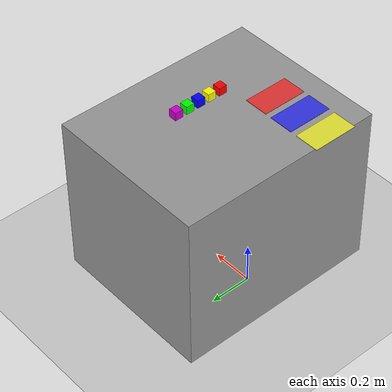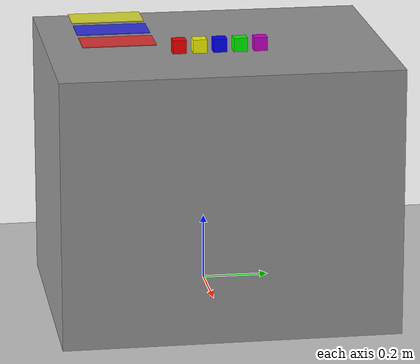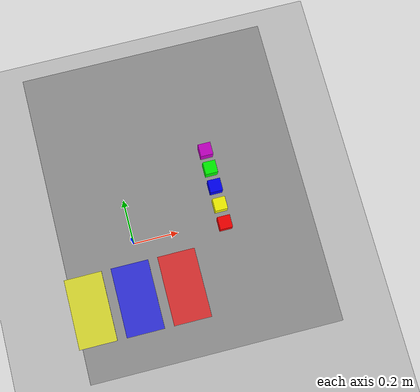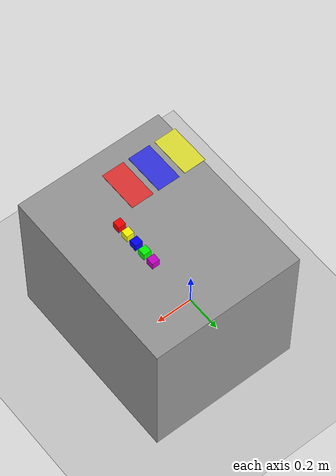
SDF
<?xml version="1.0" ?>
<sdf version="1.6">
<world name="llm_scene">
<physics name="1ms" type="ignored">
  <max_step_size>0.001</max_step_size>
  <real_time_factor>1.0</real_time_factor>
</physics>
<plugin filename="gz-sim-physics-system" name="gz::sim::systems::Physics"/>
<plugin filename="gz-sim-user-commands-system" name="gz::sim::systems::UserCommands"/>
<plugin filename="gz-sim-scene-broadcaster-system" name="gz::sim::systems::SceneBroadcaster"/>

<light type="directional" name="sun">
  <cast_shadows>true</cast_shadows>
  <pose>0 0 10 0 0 0</pose>
  <diffuse>0.8 0.8 0.8 1</diffuse>
  <specular>0.2 0.2 0.2 1</specular>
  <direction>-0.5 0.1 -0.9</direction>
</light>

<model name="ground_plane">
  <static>true</static>
  <link name="link">
    <collision name="collision">
      <geometry><plane><normal>0 0 1</normal><size>100 100</size></plane></geometry>
    </collision>
    <visual name="visual">
      <geometry><plane><normal>0 0 1</normal><size>100 100</size></plane></geometry>
      <material><ambient>0.8 0.8 0.8 1</ambient><diffuse>0.8 0.8 0.8 1</diffuse></material>
    </visual>
  </link>
</model>

<!-- BAN LAM VIEC -->
<model name="table">
  <static>true</static>
  <pose>0.20 0 0.40 0 0 0</pose>
  <link name="link">
    <collision name="surface">
      <geometry><box><size>0.8 1.0 0.8</size></box></geometry>
    </collision>
    <visual name="visual">
      <geometry><box><size>0.8 1.0 0.8</size></box></geometry>
      <material><ambient>0.6 0.6 0.6 1</ambient><diffuse>0.6 0.6 0.6 1</diffuse></material>
    </visual>
  </link>
</model>

<!-- ZONES (THAY DOI TOA DO CHUAN AN TOAN BEN PHAI) -->
<model name="zone_red">
  <static>true</static>
  <pose>0.15 -0.28 0.801 0 0 0</pose>
  <link name="link">
    <visual name="v"><geometry><box><size>0.12 0.22 0.002</size></box></geometry>
    <material><ambient>0.9 0.2 0.2 1</ambient><diffuse>0.9 0.2 0.2 1</diffuse></material></visual>
  </link>
</model>

<model name="zone_blue">
  <static>true</static>
  <pose>0.00 -0.28 0.801 0 0 0</pose>
  <link name="link">
    <visual name="v"><geometry><box><size>0.12 0.22 0.002</size></box></geometry>
    <material><ambient>0.2 0.2 0.9 1</ambient><diffuse>0.2 0.2 0.9 1</diffuse></material></visual>
  </link>
</model>

<model name="zone_yellow">
  <static>true</static>
  <pose>-0.15 -0.28 0.801 0 0 0</pose>
  <link name="link">
    <visual name="v"><geometry><box><size>0.12 0.22 0.002</size></box></geometry>
    <material><ambient>0.9 0.9 0.2 1</ambient><diffuse>0.9 0.9 0.2 1</diffuse></material></visual>
  </link>
</model>

<!-- CUBES (THAY DOI TOA DO CHUAN TRONG TAM VOI THICH HOP 0.32M) -->
<model name="red_cube">
  <pose>0.32 -0.12 0.825 0 0 0</pose>
  <link name="link">
    <inertial><mass>0.05</mass></inertial>
    <collision name="c"><geometry><box><size>0.04 0.04 0.04</size></box></geometry></collision>
    <visual name="v"><geometry><box><size>0.04 0.04 0.04</size></box></geometry>
    <material><ambient>1 0 0 1</ambient><diffuse>1 0 0 1</diffuse></material></visual>
  </link>
</model>

<model name="yellow_cube">
  <pose>0.32 -0.06 0.825 0 0 0</pose>
  <link name="link">
    <inertial><mass>0.05</mass></inertial>
    <collision name="c"><geometry><box><size>0.04 0.04 0.04</size></box></geometry></collision>
    <visual name="v"><geometry><box><size>0.04 0.04 0.04</size></box></geometry>
    <material><ambient>1 1 0 1</ambient><diffuse>1 1 0 1</diffuse></material></visual>
  </link>
</model>

<model name="blue_cube">
  <pose>0.32 0.00 0.825 0 0 0</pose>
  <link name="link">
    <inertial><mass>0.05</mass></inertial>
    <collision name="c"><geometry><box><size>0.04 0.04 0.04</size></box></geometry></collision>
    <visual name="v"><geometry><box><size>0.04 0.04 0.04</size></box></geometry>
    <material><ambient>0 0 1 1</ambient><diffuse>0 0 1 1</diffuse></material></visual>
  </link>
</model>

<model name="green_cube">
  <pose>0.32 0.06 0.825 0 0 0</pose>
  <link name="link">
    <inertial><mass>0.05</mass></inertial>
    <collision name="c"><geometry><box><size>0.04 0.04 0.04</size></box></geometry></collision>
    <visual name="v"><geometry><box><size>0.04 0.04 0.04</size></box></geometry>
    <material><ambient>0 1 0 1</ambient><diffuse>0 1 0 1</diffuse></material></visual>
  </link>
</model>

<model name="purple_cube">
  <pose>0.32 0.12 0.825 0 0 0</pose>
  <link name="link">
    <inertial><mass>0.05</mass></inertial>
    <collision name="c"><geometry><box><size>0.04 0.04 0.04</size></box></geometry></collision>
    <visual name="v"><geometry><box><size>0.04 0.04 0.04</size></box></geometry>
    <material><ambient>0.8 0 0.8 1</ambient><diffuse>0.8 0 0.8 1</diffuse></material></visual>
  </link>
</model>
</world>
</sdf>
